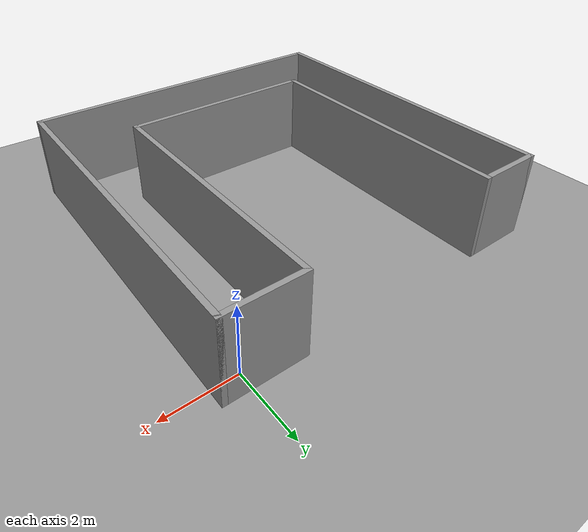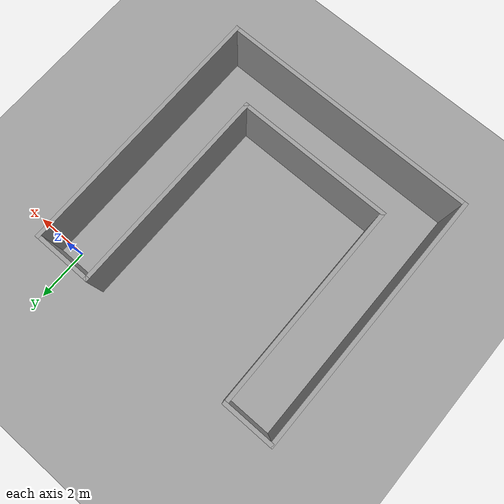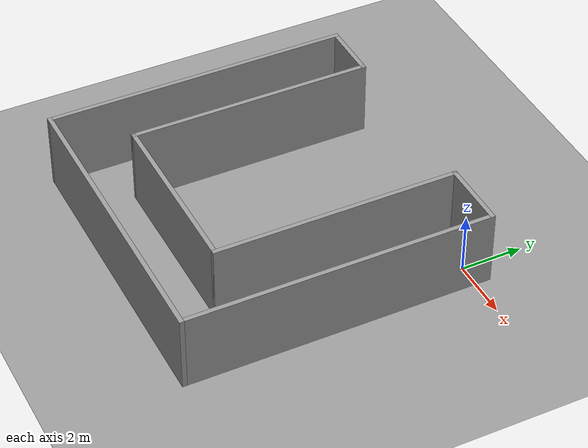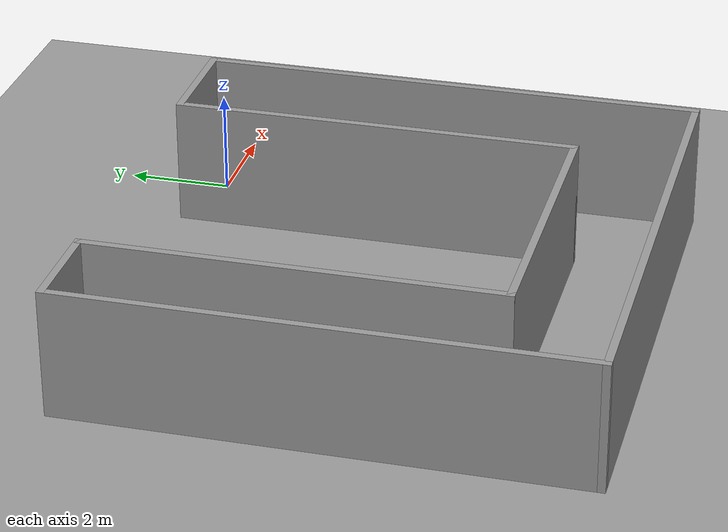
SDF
<sdf version="1.6">
 <world name="default">
  <light name="sun" type="directional">
   <pose>0 0 10 0 -0 0</pose>
   <diffuse>0.8 0.8 0.8 1</diffuse>
   <specular>0.2 0.2 0.2 1</specular>
   <attenuation>
    <range>1000</range>
    <constant>0.9</constant>
    <linear>0.01</linear>
    <quadratic>0.001</quadratic>
   </attenuation>
   <direction>0.5 0.1 -0.9</direction>
  </light>
  <scene><ambient>0.4 0.4 0.4 1</ambient><background>0.7 0.7 0.7 1</background><shadows>1</shadows></scene>
  <physics name="default_physics" default="0" type="ode">
   <max_step_size>0.01</max_step_size>
   <real_time_factor>1</real_time_factor>
   <real_time_update_rate>100</real_time_update_rate>
  </physics>
  <model name="ground_plane_0">
   <static>1</static>
   <link name="link">
    <collision name="collision">
     <geometry><plane><normal>0 0 1</normal><size>100 100</size></plane></geometry>
     <surface><friction><ode><mu>100</mu><mu2>50</mu2></ode></friction></surface>
    </collision>
    <visual name="visual">
     <cast_shadows>0</cast_shadows>
     <geometry><plane><normal>0 0 1</normal><size>100 100</size></plane></geometry>
     <material>
      <script><uri>file://media/materials/scripts/gazebo.material</uri><name>Gazebo/Grey</name></script>
     </material>
    </visual>
    <velocity_decay><linear>0</linear><angular>0</angular></velocity_decay>
   </link>
   <pose>0.497681 0 0 0 -0 0</pose>
  </model>
  <gravity>0 0 -9.8</gravity>
  <magnetic_field>6e-06 2.3e-05 -4.2e-05</magnetic_field>
  <atmosphere type="adiabatic"/>
  <spherical_coordinates>
   <surface_model>EARTH_WGS84</surface_model>
   <latitude_deg>0</latitude_deg>
   <longitude_deg>0</longitude_deg>
   <elevation>0</elevation>
   <heading_deg>0</heading_deg>
  </spherical_coordinates>
  <model name="simple_walls.world">
   <pose>-4.22941 -4.50044 0 0 -0 0</pose>
   <link name="Wall_33">
    <collision name="Wall_33_Collision">
     <geometry><box><size>10 0.15 2.5</size></box></geometry>
     <pose>0 0 1.25 0 -0 0</pose>
    </collision>
    <visual name="Wall_33_Visual">
     <pose>0 0 1.25 0 -0 0</pose>
     <geometry><box><size>10 0.15 2.5</size></box></geometry>
     <material>
      <script><uri>file://media/materials/scripts/gazebo.material</uri><name>Gazebo/Grey</name></script>
      <ambient>1 1 1 1</ambient>
     </material>
     <meta><layer>0</layer></meta>
    </visual>
    <pose>4.925 0 0 0 0 -1.5708</pose>
   </link>
   <link name="Wall_34">
    <collision name="Wall_34_Collision">
     <geometry><box><size>10 0.15 2.5</size></box></geometry>
     <pose>0 0 1.25 0 -0 0</pose>
    </collision>
    <visual name="Wall_34_Visual">
     <pose>0 0 1.25 0 -0 0</pose>
     <geometry><box><size>10 0.15 2.5</size></box></geometry>
     <material>
      <script><uri>file://media/materials/scripts/gazebo.material</uri><name>Gazebo/Grey</name></script>
      <ambient>1 1 1 1</ambient>
     </material>
     <meta><layer>0</layer></meta>
    </visual>
    <pose>0 -4.925 0 0 -0 3.14159</pose>
   </link>
   <link name="Wall_35">
    <collision name="Wall_35_Collision">
     <geometry><box><size>10 0.15 2.5</size></box></geometry>
     <pose>0 0 1.25 0 -0 0</pose>
    </collision>
    <visual name="Wall_35_Visual">
     <pose>0 0 1.25 0 -0 0</pose>
     <geometry><box><size>10 0.15 2.5</size></box></geometry>
     <material>
      <script><uri>file://media/materials/scripts/gazebo.material</uri><name>Gazebo/Grey</name></script>
      <ambient>1 1 1 1</ambient>
     </material>
     <meta><layer>0</layer></meta>
    </visual>
    <pose>-4.925 0 0 0 -0 1.5708</pose>
   </link>
   <link name="Wall_36">
    <collision name="Wall_36_Collision">
     <geometry><box><size>2 0.15 2.5</size></box></geometry>
     <pose>0 0 1.25 0 -0 0</pose>
    </collision>
    <visual name="Wall_36_Visual">
     <pose>0 0 1.25 0 -0 0</pose>
     <geometry><box><size>2 0.15 2.5</size></box></geometry>
     <material>
      <script><uri>file://media/materials/scripts/gazebo.material</uri><name>Gazebo/Grey</name></script>
      <ambient>1 1 1 1</ambient>
     </material>
     <meta><layer>0</layer></meta>
    </visual>
    <pose>-4 4.925 0 0 -0 0</pose>
   </link>
   <link name="Wall_37">
    <collision name="Wall_37_Collision">
     <geometry><box><size>8 0.15 2.5</size></box></geometry>
     <pose>0 0 1.25 0 -0 0</pose>
    </collision>
    <visual name="Wall_37_Visual">
     <pose>0 0 1.25 0 -0 0</pose>
     <geometry><box><size>8 0.15 2.5</size></box></geometry>
     <material>
      <script><uri>file://media/materials/scripts/gazebo.material</uri><name>Gazebo/Grey</name></script>
      <ambient>1 1 1 1</ambient>
     </material>
     <meta><layer>0</layer></meta>
    </visual>
    <pose>-3.075 1 0 0 0 -1.5708</pose>
   </link>
   <link name="Wall_38">
    <collision name="Wall_38_Collision">
     <geometry><box><size>6 0.15 2.5</size></box></geometry>
     <pose>0 0 1.25 0 -0 0</pose>
    </collision>
    <visual name="Wall_38_Visual">
     <pose>0 0 1.25 0 -0 0</pose>
     <geometry><box><size>6 0.15 2.5</size></box></geometry>
     <material>
      <script><uri>file://media/materials/scripts/gazebo.material</uri><name>Gazebo/Grey</name></script>
      <ambient>1 1 1 1</ambient>
     </material>
     <meta><layer>0</layer></meta>
    </visual>
    <pose>-0.15 -2.925 0 0 -0 0</pose>
   </link>
   <link name="Wall_39">
    <collision name="Wall_39_Collision">
     <geometry><box><size>8 0.15 2.5</size></box></geometry>
     <pose>0 0 1.25 0 -0 0</pose>
    </collision>
    <visual name="Wall_39_Visual">
     <pose>0 0 1.25 0 -0 0</pose>
     <geometry><box><size>8 0.15 2.5</size></box></geometry>
     <material>
      <script><uri>file://media/materials/scripts/gazebo.material</uri><name>Gazebo/Grey</name></script>
      <ambient>1 1 1 1</ambient>
     </material>
     <meta><layer>0</layer></meta>
    </visual>
    <pose>2.775 1 0 0 -0 1.5708</pose>
   </link>
   <link name="Wall_40">
    <collision name="Wall_40_Collision">
     <geometry><box><size>2.3 0.15 2.5</size></box></geometry>
     <pose>0 0 1.25 0 -0 0</pose>
    </collision>
    <visual name="Wall_40_Visual">
     <pose>0 0 1.25 0 -0 0</pose>
     <geometry><box><size>2.3 0.15 2.5</size></box></geometry>
     <material>
      <script><uri>file://media/materials/scripts/gazebo.material</uri><name>Gazebo/Grey</name></script>
      <ambient>1 1 1 1</ambient>
     </material>
     <meta><layer>0</layer></meta>
    </visual>
    <pose>3.85 4.925 0 0 -0 0</pose>
   </link>
   <static>1</static>
  </model>
 </world>
</sdf>
